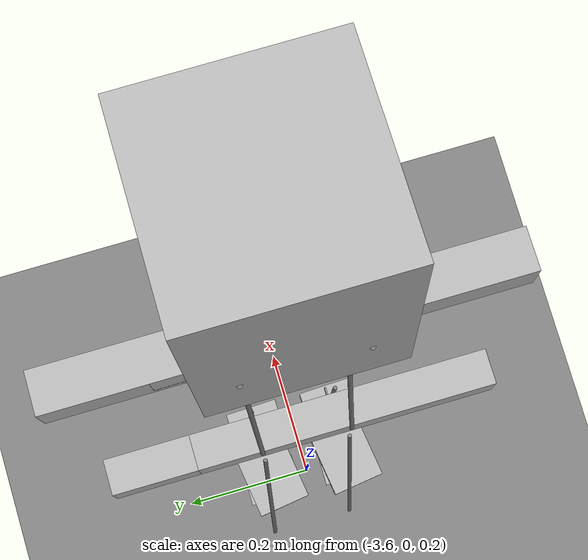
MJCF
<mujoco model="w2l_animatlab_port">
  <!-- Generated by make_w2l_mjcf.py from Walker_2_Layer_CPG.aproj (read-only parse).
       Frame remap: MuJoCo(x,y,z) = AnimatLab(x,-z,y). See report for mappings. -->
  <compiler angle="radian" autolimits="true"/>
  <option timestep="0.001" gravity="0 0 -9.8"/>
  <default>
    <joint type="hinge" damping="0"/>
    <geom type="box" density="0" contype="1" conaffinity="1"/>
    <site type="sphere" size="0.006" group="3"/>
  </default>
  <worldbody>
    <geom name="ground" type="plane" size="5 5 0.1" pos="0 0 0"
          friction="1 0.005 0.0001" contype="1" conaffinity="1"/>
    <body name="Root" pos="-3.454 0 1.29298" quat="0.99843241 0 0.055970727 0">
      <freejoint name="root"/>
      <inertial pos="0.02 0 0" mass="30.991" diaginertia="0.3028957 0.3028957 0.20660667"/>
      <geom name="Root" size="0.1 0.1 0.139" friction="1 0.005 0.0001" rgba="0.7 0.7 0.7 1"/>
      <site name="site_body_L_f" pos="0.1 -0.06 -0.055"/>
      <site name="site_body_R_f" pos="0.1 0.06 -0.055"/>
      <site name="site_Body_R_b" pos="-0.1 0.06 -0.055"/>
      <site name="site_body_L_b" pos="-0.1 -0.06 -0.055"/>
      <body name="femur_L" pos="1.2143064e-16 -0.06 -0.27000024" quat="0.99955542 0 -0.029815575 0">
        <inertial pos="0 0 0" mass="3.5" diaginertia="0.052179167 0.0014583333 0.052179167"/>
        <joint name="hip_L" pos="0 0 0.21" axis="-0.000202377209 1 2.27614967e-05" damping="12.7358" limited="true" range="-0.2617993878 0.401425728"/>
        <geom name="femur_L" size="0.025 0.21 0.025" friction="1 0.005 0.0001" rgba="0.7 0.7 0.7 1"/>
        <site name="site_femur_L_f" pos="0.0348804 0 0.0681122"/>
        <site name="site_femur_L_b" pos="-0.0348804 0 0.0722445"/>
        <site name="site_femur_L_f_low" pos="0.0348804 0 0"/>
        <site name="site_femur_L_b_low" pos="-0.0348804 0 0.00538991"/>
        <body name="tibia_L" pos="-0.048059425 0 -0.42730645" quat="0.70703487 0.70717869 3.7686962e-06 3.7686949e-06">
          <inertial pos="0 0 0" mass="1.5" diaginertia="0.0223625 0.0223625 0.000625"/>
          <joint name="knee_L" pos="0 0.22 0" axis="0.000231131132 0.000351419574 1.00000003" damping="2.97237" limited="true" range="-1.047197551 -0"/>
          <geom name="tibia_L" size="0.025 0.025 0.21" friction="1 0.005 0.0001" rgba="0.7 0.7 0.7 1"/>
          <site name="site_tibia_L_b" pos="-0.0359273 0.09 0"/>
          <site name="site_tibia_L_b_low" pos="-0.034683 0.003379 -1.057e-06"/>
          <site name="site_tibia_L_f_low" pos="0.0348804 0 0"/>
          <site name="site_tibia_L" pos="0.0348804 0.09 0"/>
          <site name="site_knee_L" pos="0.0567703 0.22749 0"/>
          <body name="foot_L" pos="-0.022524686 -0.25804255 5.2154514e-05" quat="0.70377958 -0.70650565 0.030848031 0.067767715">
            <inertial pos="0 0 0" mass="0.4" diaginertia="0.00022666667 0.00049333333 0.00069333333"/>
            <joint name="ankle_L" pos="-0.050101 0.040024 -7.231e-06" axis="0.139039956 0.990286702 0.000622692492" damping="3.10047" limited="true" range="-0.3490658504 -0.0872664626"/>
            <geom name="foot_L" size="0.06 0.04 0.01" friction="1 0.005 0.0001" rgba="0.7 0.7 0.7 1"/>
            <site name="site_foot_L_f" pos="0.03 0.0299756 0"/>
            <site name="site_foot_L_spring" pos="0 0.02 0"/>
            <site name="site_foot_L_b" pos="-0.09 0.029976 0"/>
            <body name="toe_L" pos="0.083100461 -0.011679335 -0.0068591167" quat="0.70606591 0.70620938 -0.037014624 -0.037002072">
              <inertial pos="0 0 0" mass="0.064" diaginertia="3.6266667e-05 4.2666667e-05 1.0666667e-05"/>
              <joint name="toe_L" pos="-0.02 0 0" axis="0.0347541147 0.000412348031 -0.999395891" limited="false"/>
              <geom name="toe_L" size="0.02 0.01 0.04" friction="1 0.005 0.0001" rgba="0.7 0.7 0.7 1"/>
              <site name="site_toe_L_spring" pos="0.005 0 -0.02"/>
              <body name="toe_L_contact" pos="0.0080356506 -0.010971852 0.00027880953" quat="0.70692708 -0.70707108 -0.0123396 -0.012342113">
                <inertial pos="0 0 0" mass="0.0024" diaginertia="1.2808e-06 1.325e-06 4.58e-08"/>
                <geom name="toe_L_contact" size="0.0075 0.001 0.04" friction="1 0.005 0.0001" rgba="0.7 0.7 0.7 1"/>
              </body>
            </body>
            <body name="foot_L_contact" pos="-0.016021679 0.0022549778 -0.013160067" quat="0.99756391 0 0 -0.069758421">
              <inertial pos="0 0 0" mass="0.0096" diaginertia="5.1232e-06 2.8832e-06 8e-06"/>
              <geom name="foot_L_contact" size="0.03 0.04 0.001" friction="1 0.005 0.0001" rgba="0.7 0.7 0.7 1"/>
            </body>
          </body>
        </body>
      </body>
      <body name="femur_R" pos="1.2143064e-16 0.06 -0.27000024" quat="0.99955542 0 -0.029815575 0">
        <inertial pos="0 0 0" mass="3.5" diaginertia="0.052179167 0.0014583333 0.052179167"/>
        <joint name="hip_R" pos="0 0 0.21" axis="4.12152531e-08 1 -4.63125564e-09" damping="12.7307" limited="true" range="-0.2617993878 0.401425728"/>
        <geom name="femur_R" size="0.025 0.21 0.025" friction="1 0.005 0.0001" rgba="0.7 0.7 0.7 1"/>
        <site name="site_femur_R_f_low" pos="0.0348804 0 0"/>
        <site name="site_femur_R_b" pos="-0.03488 0 0.07244"/>
        <site name="site_femur_R_f" pos="0.03488 0 0.06811"/>
        <site name="site_femur_R_b_low" pos="-0.0348804 0 0.00539"/>
        <body name="tibia_R" pos="-0.048059425 0 -0.42730645" quat="0.70703487 0.70717869 3.7686962e-06 3.7686949e-06">
          <inertial pos="0 0 0" mass="1.5" diaginertia="0.0223625 0.0223625 0.000625"/>
          <joint name="knee_R" pos="0 0.22 0" axis="3.72004461e-05 -0.000817850903 1.00000002" damping="2.97245" limited="true" range="-1.047197551 -0"/>
          <geom name="tibia_R" size="0.025 0.025 0.21" friction="1 0.005 0.0001" rgba="0.7 0.7 0.7 1"/>
          <site name="site_tibia_R_f_low" pos="0.0348804 0 0"/>
          <site name="site_tibia_R_b" pos="-0.03593 0.09 0"/>
          <site name="site_knee_R" pos="0.05677 0.22749 0"/>
          <site name="site_tibia_R_b_low" pos="-0.034683 0.003379 -1.057e-06"/>
          <site name="site_tibia_R_f" pos="0.0348804 0.09 0"/>
          <body name="foot_R" pos="-0.022524686 -0.25804255 5.2154514e-05" quat="0.70377958 -0.70650565 0.030848031 0.067767715">
            <inertial pos="0 0 0" mass="0.4" diaginertia="0.00022666667 0.00049333333 0.00069333333"/>
            <joint name="ankle_R" pos="-0.050101 0.040024 -7.231e-06" axis="0.139039956 0.990286702 0.000622692492" damping="3.10047" limited="true" range="-0.3490658504 -0.0872664626"/>
            <geom name="foot_R" size="0.06 0.04 0.01" friction="1 0.005 0.0001" rgba="0.7 0.7 0.7 1"/>
            <site name="site_foot_R_f" pos="0.03 0.02998 0"/>
            <site name="site_foot_R_b" pos="-0.09 0.02998 0"/>
            <site name="site_foot_R_spring" pos="0 0.02 0"/>
            <body name="toe_R" pos="0.083100461 -0.011679335 -0.0068591167" quat="0.70606591 -0.70620938 0.037014624 -0.037002072">
              <inertial pos="0 0 0" mass="0.064" diaginertia="3.6266667e-05 4.2666667e-05 1.0666667e-05"/>
              <joint name="toe_R" pos="-0.02 0 0" axis="0.0347056026 -6.65095051e-06 0.999397662" limited="false"/>
              <geom name="toe_R" size="0.02 0.01 0.04" friction="1 0.005 0.0001" rgba="0.7 0.7 0.7 1"/>
              <site name="site_toe_R" pos="0.005 0 0.02"/>
              <body name="toe_R_contact" pos="0.0081128351 0.010351555 -0.00028136569" quat="0.70692708 0.70707108 0.0123396 -0.012342113">
                <inertial pos="0 0 0" mass="0.0024" diaginertia="1.2808e-06 1.325e-06 4.58e-08"/>
                <geom name="toe_R_contact" size="0.0075 0.001 0.04" friction="1 0.005 0.0001" rgba="0.7 0.7 0.7 1"/>
              </body>
            </body>
            <body name="foot_R_contact" pos="-0.014266984 0.0020080185 -0.011748338" quat="0.99756391 0 0 -0.069758421">
              <inertial pos="0 0 0" mass="0.0096" diaginertia="5.1232e-06 2.8832e-06 8e-06"/>
              <geom name="foot_R_contact" size="0.03 0.04 0.001" friction="1 0.005 0.0001" rgba="0.7 0.7 0.7 1"/>
            </body>
          </body>
        </body>
      </body>
    </body>
  </worldbody>
  <tendon>
    <spatial name="t_hip_L_flx"><site site="site_body_L_f"/><site site="site_femur_L_f"/></spatial>
    <spatial name="t_hip_R_flx"><site site="site_femur_R_b"/><site site="site_Body_R_b"/></spatial>
    <spatial name="t_knee_L_flx"><site site="site_femur_L_b_low"/><site site="site_tibia_L_b"/></spatial>
    <spatial name="t_ankle_L_ext"><site site="site_foot_L_b"/><site site="site_tibia_L_b_low"/></spatial>
    <spatial name="t_ankle_L_flx"><site site="site_foot_L_f"/><site site="site_tibia_L_f_low"/></spatial>
    <spatial name="t_knee_L_ext"><site site="site_femur_L_f_low"/><site site="site_knee_L"/><site site="site_tibia_L"/></spatial>
    <spatial name="t_knee_R_ext"><site site="site_femur_R_f_low"/><site site="site_knee_R"/><site site="site_tibia_R_f"/></spatial>
    <spatial name="t_ankle_R_ext"><site site="site_tibia_R_b_low"/><site site="site_foot_R_b"/></spatial>
    <spatial name="t_knee_R_flx"><site site="site_femur_R_b_low"/><site site="site_tibia_R_b"/></spatial>
    <spatial name="t_ankle_R_flx"><site site="site_tibia_R_f_low"/><site site="site_foot_R_f"/></spatial>
    <spatial name="t_hip_R_ext"><site site="site_body_R_f"/><site site="site_femur_R_f"/></spatial>
    <spatial name="t_hip_L_ext"><site site="site_body_L_b"/><site site="site_femur_L_b"/></spatial>
    <!-- source damping 20000 N.s/m capped to 172 (critical) for 1 ms stability -->
    <spatial name="t_Body_11" stiffness="16000" damping="172" springlength="0.088"><site site="site_foot_L_spring"/><site site="site_toe_L_spring"/></spatial>
    <!-- source damping 20000 N.s/m capped to 172 (critical) for 1 ms stability -->
    <spatial name="t_toe_R_spring" stiffness="16000" damping="172" springlength="0.088"><site site="site_toe_R"/><site site="site_foot_R_spring"/></spatial>
  </tendon>
  <actuator>
    <muscle name="hip_L_flx" tendon="t_hip_L_flx" force="1500" range="0.0811 0.2589" lengthrange="0.0811 0.2589" timeconst="0.01 0.01"/>
    <muscle name="hip_R_flx" tendon="t_hip_R_flx" force="1500" range="0.13 0.29" lengthrange="0.13 0.29" timeconst="0.01 0.01"/>
    <muscle name="knee_L_flx" tendon="t_knee_L_flx" force="1000" range="0.245 0.445" lengthrange="0.245 0.445" timeconst="0.01 0.01"/>
    <muscle name="ankle_L_ext" tendon="t_ankle_L_ext" force="1000" range="-0.77536 1.22464" lengthrange="-0.77536 1.22464" timeconst="0.01 0.01"/>
    <muscle name="ankle_L_flx" tendon="t_ankle_L_flx" force="1500" range="-0.7525 1.2475" lengthrange="-0.7525 1.2475" timeconst="0.01 0.01"/>
    <muscle name="knee_L_ext" tendon="t_knee_L_ext" force="1500" range="0.26 0.42" lengthrange="0.26 0.42" timeconst="0.01 0.01"/>
    <muscle name="knee_R_ext" tendon="t_knee_R_ext" force="1500" range="0.26 0.42" lengthrange="0.26 0.42" timeconst="0.01 0.01"/>
    <muscle name="ankle_R_ext" tendon="t_ankle_R_ext" force="1000" range="-0.77536 1.22464" lengthrange="-0.77536 1.22464" timeconst="0.01 0.01"/>
    <muscle name="knee_R_flx" tendon="t_knee_R_flx" force="1000" range="0.245 0.445" lengthrange="0.245 0.445" timeconst="0.01 0.01"/>
    <muscle name="ankle_R_flx" tendon="t_ankle_R_flx" force="1500" range="-0.7525 1.2475" lengthrange="-0.7525 1.2475" timeconst="0.01 0.01"/>
    <muscle name="hip_R_ext" tendon="t_hip_R_ext" force="1500" range="0.0811 0.2589" lengthrange="0.0811 0.2589" timeconst="0.01 0.01"/>
    <muscle name="hip_L_ext" tendon="t_hip_L_ext" force="1500" range="0.13 0.29" lengthrange="0.13 0.29" timeconst="0.01 0.01"/>
  </actuator>
  <keyframe>
    <key name="spawn" qpos="-3.454 0 1.007846 0.99843241 0 0.055970727 0 0 0 -0.21816616 0 0 0 -0.21816616 0" ctrl="0 0 0 0 0 0 0 0 0 0 0 0"/>
  </keyframe>
</mujoco>
